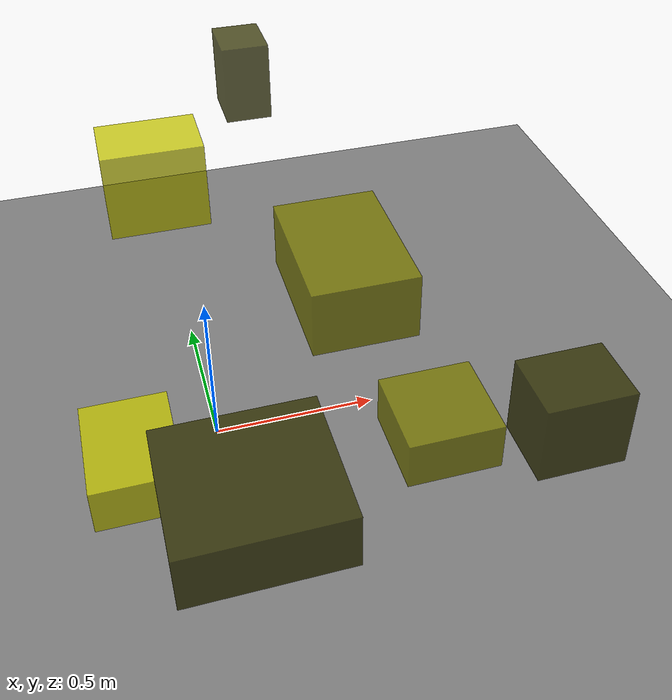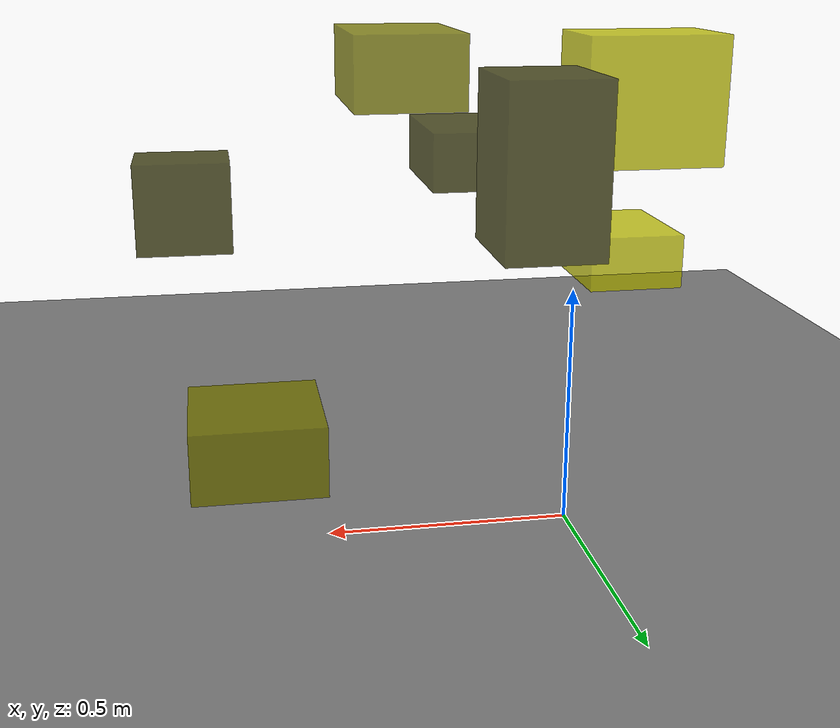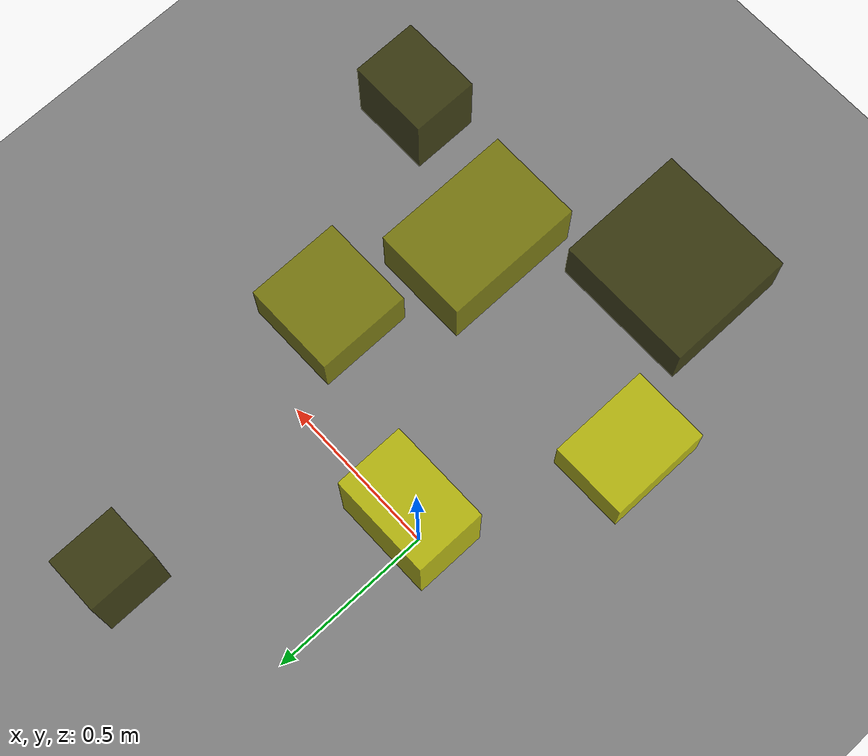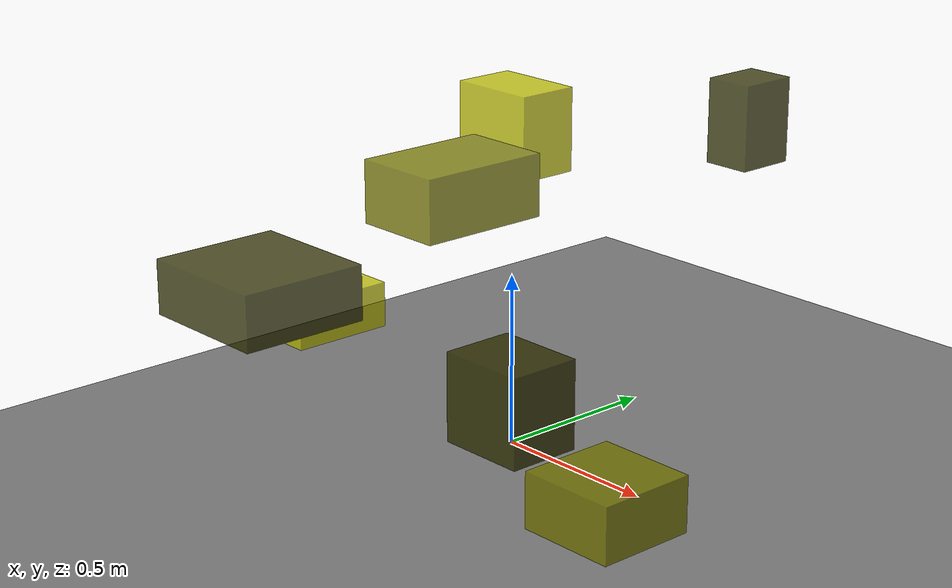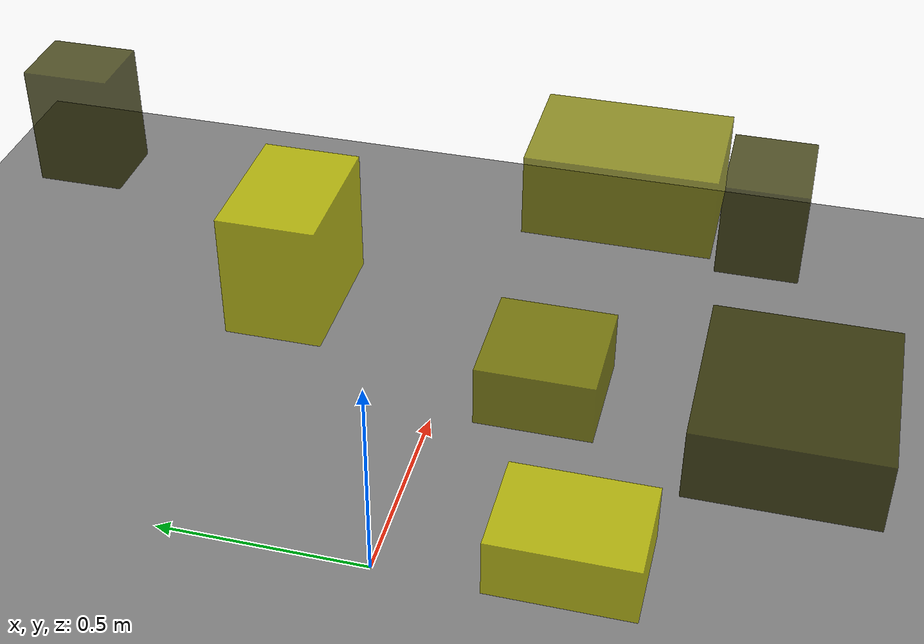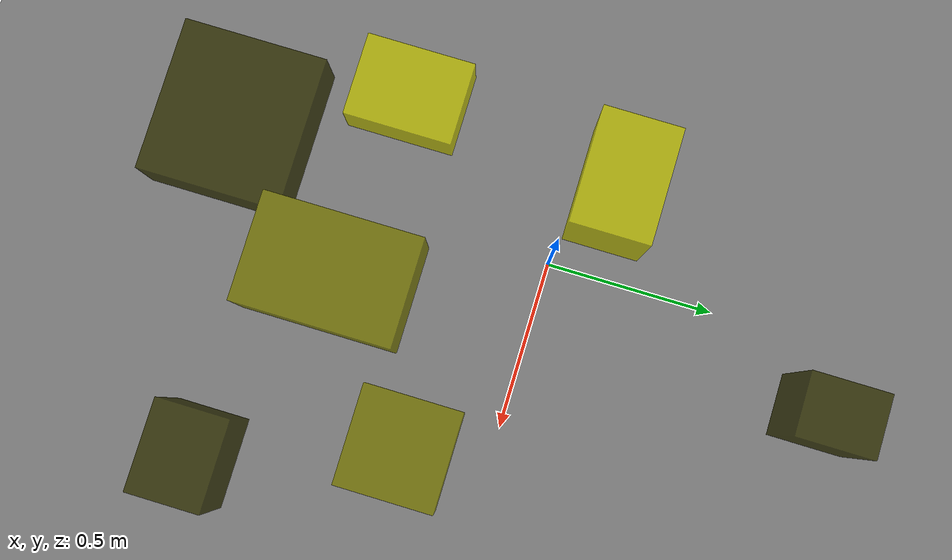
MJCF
<?xml version="1.0"?>
<mujoco model="obstacle_scene">
  <compiler angle="radian" coordinate="local"/>
  <option timestep="0.001" gravity="0 0 -9.81"/>

  <asset>
    <material name="obstacle_mat" rgba="0.8 0.8 0.0 0.8"/>
    <material name="ground_mat" rgba="0.5 0.5 0.5 1"/>
  </asset>

  <worldbody>
    <!-- Ground plane -->
    <geom name="ground" type="plane" size="3 3 0.1" material="ground_mat"/>

    <!-- Obstacles -->
    <body name="obstacle_0" pos="0.775892 -0.713704 0.555225">
      <geom name="obs_0" type="box" size="0.115320 0.093230 0.111546" rgba="0.2 0.2 0.0 0.8"/>
    </body>
    <body name="obstacle_1" pos="0.634865 -0.253744 0.109126">
      <geom name="obs_1" type="box" size="0.146681 0.145389 0.080460" rgba="0.5 0.5 0.0 0.8"/>
    </body>
    <body name="obstacle_2" pos="-0.260600 -0.475309 0.455474">
      <geom name="obs_2" type="box" size="0.109956 0.143890 0.062999" rgba="0.8 0.8 0.0 0.8"/>
    </body>
    <body name="obstacle_3" pos="0.265734 0.656632 0.882098">
      <geom name="obs_3" type="box" size="0.071136 0.086810 0.122155" rgba="0.2 0.2 0.0 0.8"/>
    </body>
    <body name="obstacle_4" pos="0.281494 -0.458005 0.904652">
      <geom name="obs_4" type="box" size="0.123035 0.179378 0.082149" rgba="0.5 0.5 0.0 0.8"/>
    </body>
    <body name="obstacle_5" pos="-0.087003 0.091259 0.894856">
      <geom name="obs_5" type="box" size="0.130651 0.089315 0.119161" rgba="0.8 0.8 0.0 0.8"/>
    </body>
    <body name="obstacle_6" pos="-0.029920 -0.831711 0.644151">
      <geom name="obs_6" type="box" size="0.189794 0.177072 0.074101" rgba="0.2 0.2 0.0 0.8"/>
    </body>
  </worldbody>
</mujoco>
